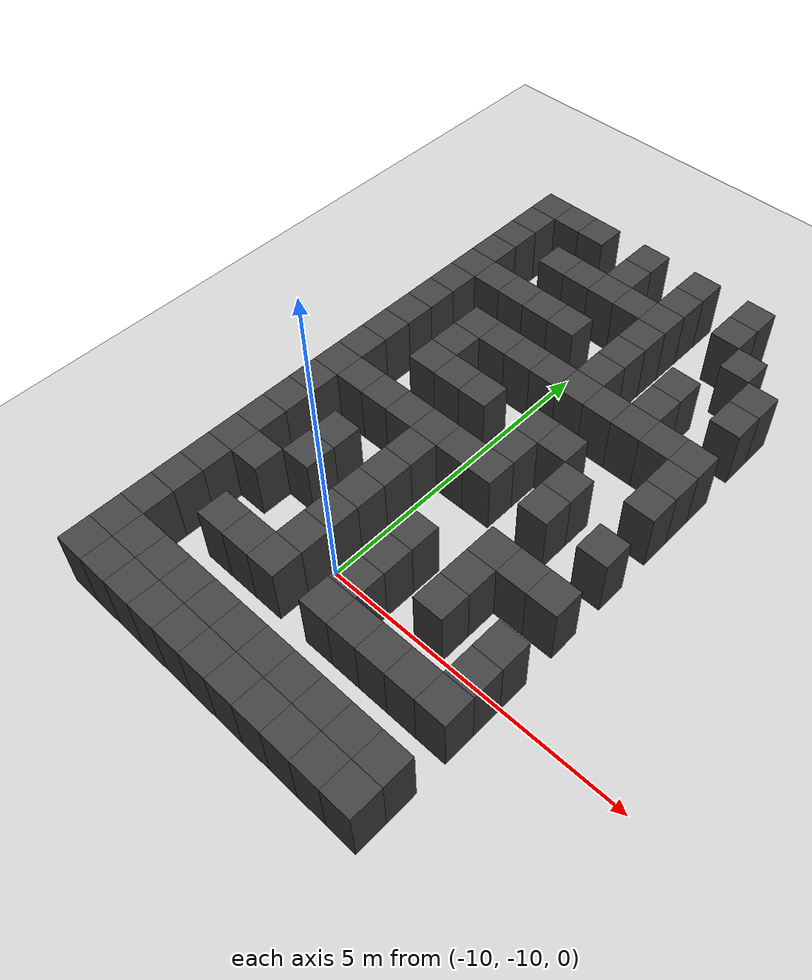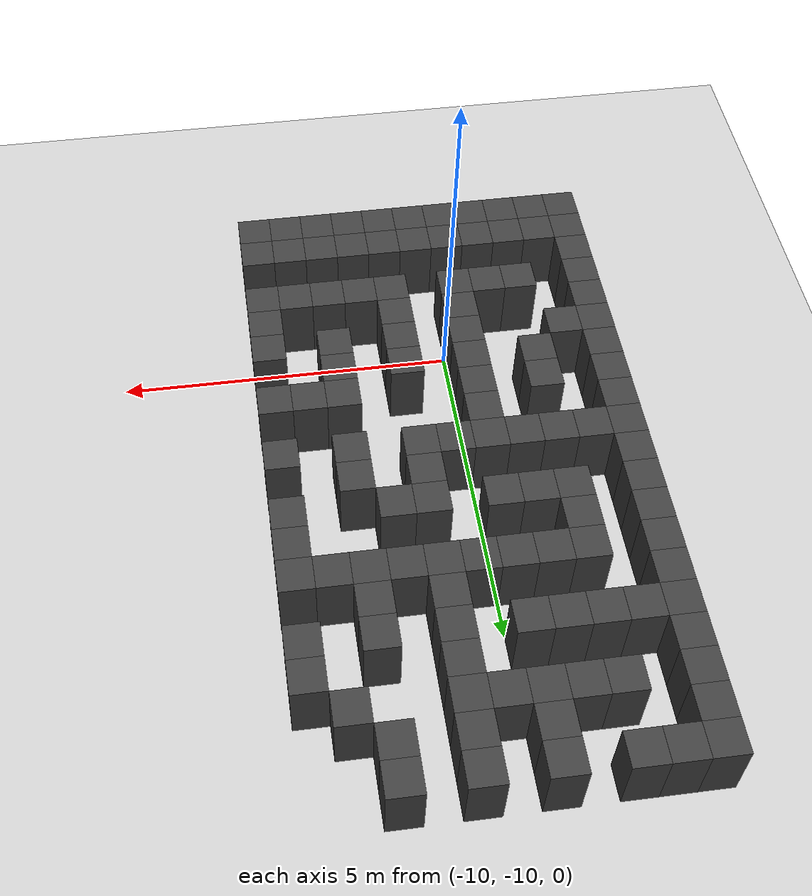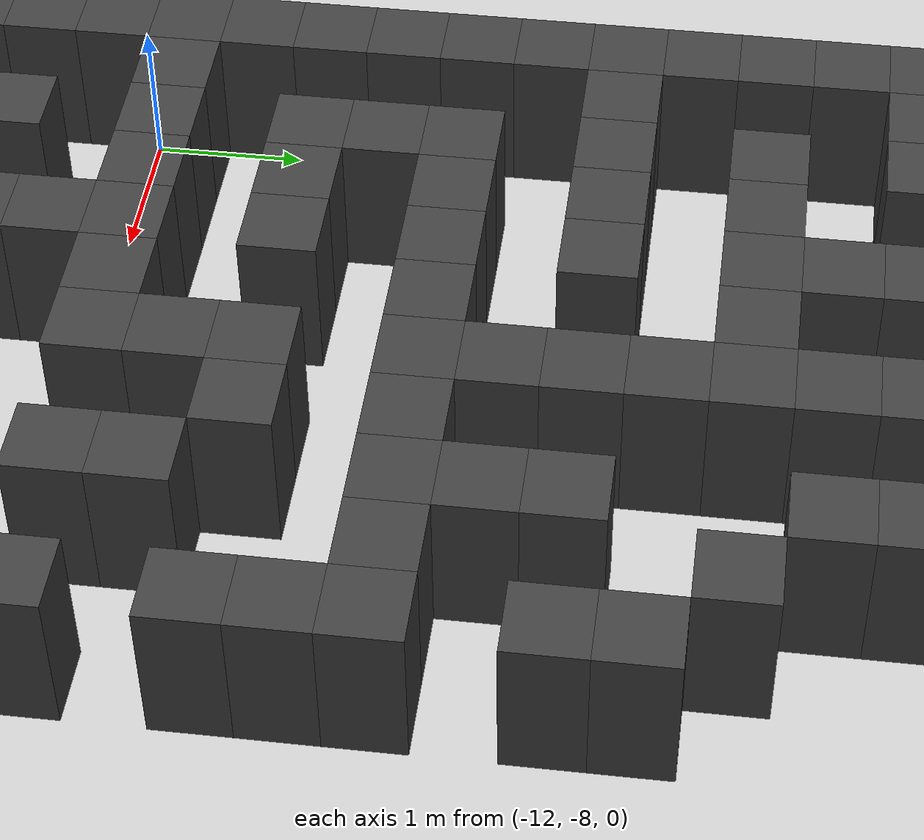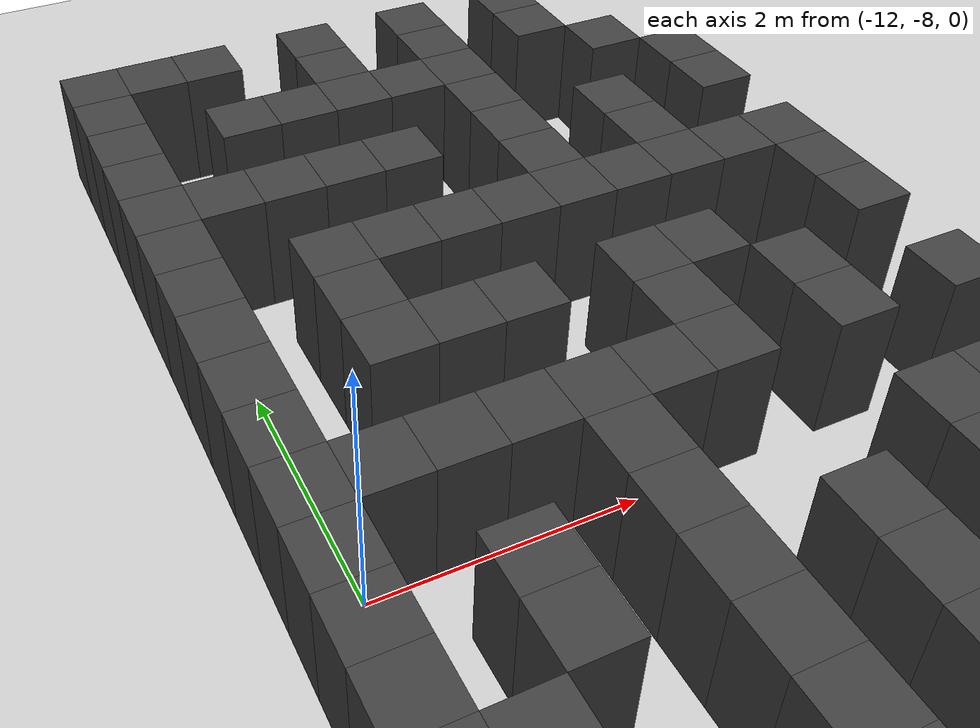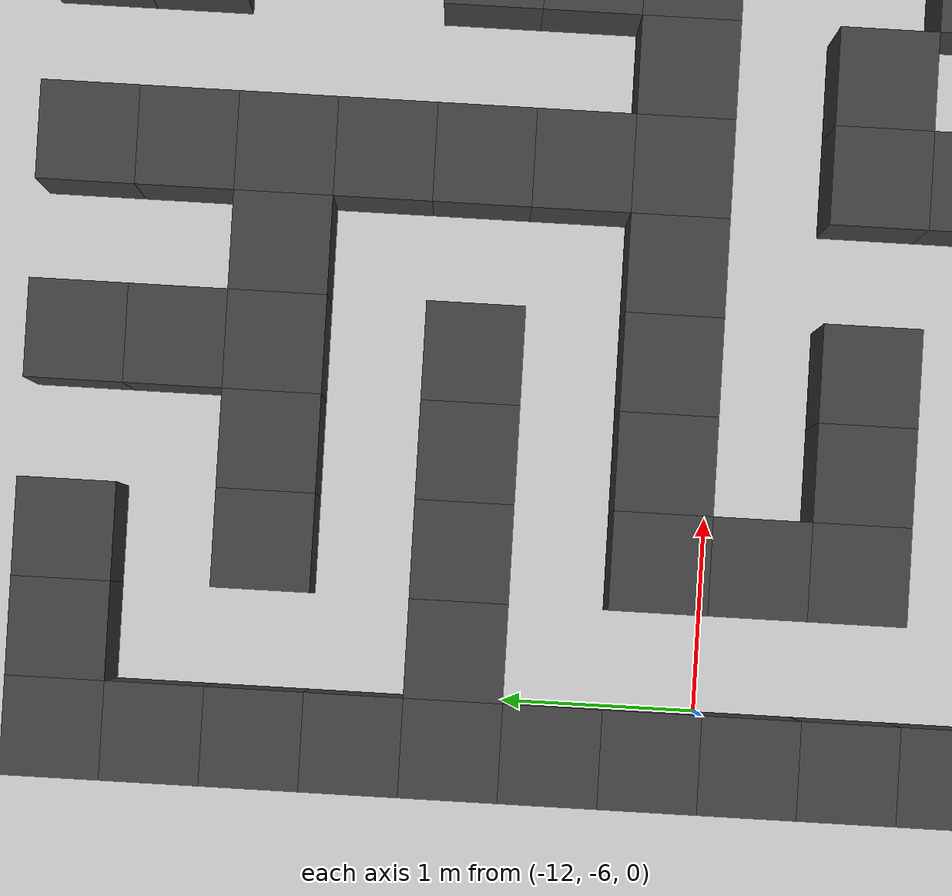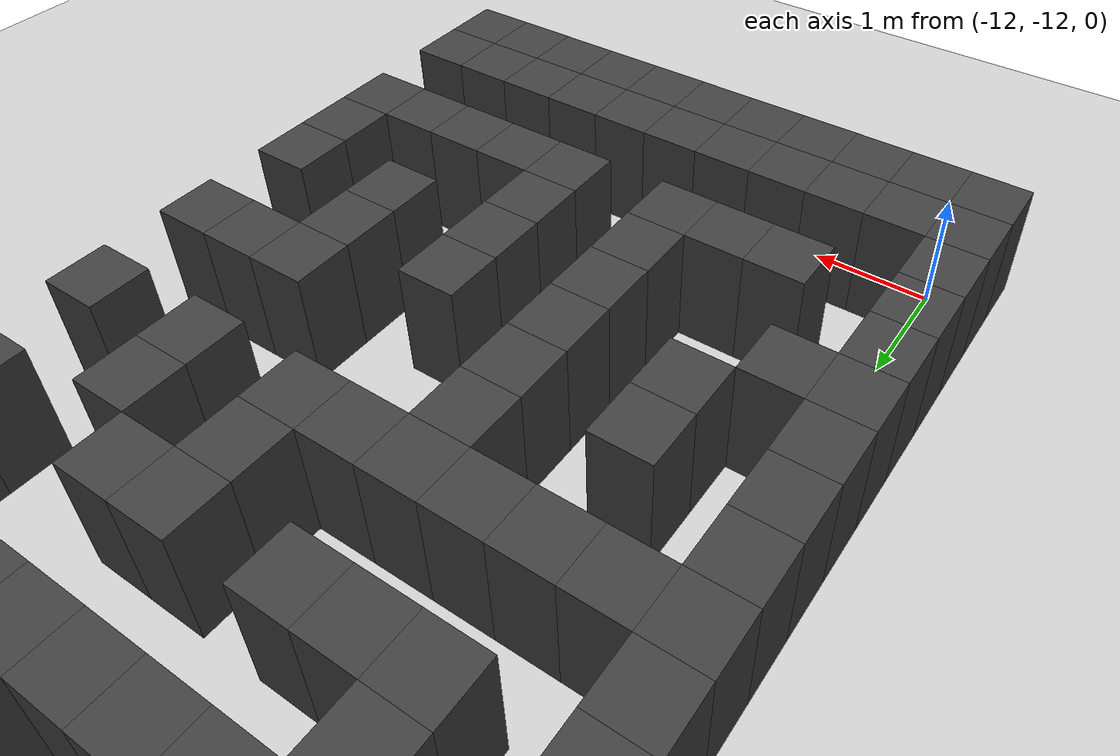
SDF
<sdf version="1.7">
 <world name="map_18553">
  <model name="ground_plane">
   <static>true</static>
   <link name="link">
    <collision name="collision">
     <geometry><plane><normal>0 0 1</normal><size>200 200</size></plane></geometry>
    </collision>
    <visual name="visual">
     <geometry><plane><normal>0 0 1</normal><size>200 200</size></plane></geometry>
     <material><ambient>0.8 0.8 0.8 1</ambient><diffuse>0.8 0.8 0.8 1</diffuse></material>
    </visual>
   </link>
  </model>
  <model name="maze_environment">
   <static>true</static>
   <link name="wall_757">
    <pose>-12.250 -2.750 0.500 0 0 0</pose>
    <collision name="col"><geometry><box><size>0.5 0.5 1.0</size></box></geometry></collision>
    <visual name="vis">
     <geometry><box><size>0.5 0.5 1.0</size></box></geometry>
     <material><ambient>0.15 0.15 0.15 1</ambient><diffuse>0.25 0.25 0.25 1</diffuse></material>
    </visual>
   </link>
   <link name="wall_758">
    <pose>-11.750 -2.750 0.500 0 0 0</pose>
    <collision name="col"><geometry><box><size>0.5 0.5 1.0</size></box></geometry></collision>
    <visual name="vis">
     <geometry><box><size>0.5 0.5 1.0</size></box></geometry>
     <material><ambient>0.15 0.15 0.15 1</ambient><diffuse>0.25 0.25 0.25 1</diffuse></material>
    </visual>
   </link>
   <link name="wall_759">
    <pose>-11.250 -2.750 0.500 0 0 0</pose>
    <collision name="col"><geometry><box><size>0.5 0.5 1.0</size></box></geometry></collision>
    <visual name="vis">
     <geometry><box><size>0.5 0.5 1.0</size></box></geometry>
     <material><ambient>0.15 0.15 0.15 1</ambient><diffuse>0.25 0.25 0.25 1</diffuse></material>
    </visual>
   </link>
   <link name="wall_760">
    <pose>-10.250 -2.750 0.500 0 0 0</pose>
    <collision name="col"><geometry><box><size>0.5 0.5 1.0</size></box></geometry></collision>
    <visual name="vis">
     <geometry><box><size>0.5 0.5 1.0</size></box></geometry>
     <material><ambient>0.15 0.15 0.15 1</ambient><diffuse>0.25 0.25 0.25 1</diffuse></material>
    </visual>
   </link>
   <link name="wall_761">
    <pose>-9.250 -2.750 0.500 0 0 0</pose>
    <collision name="col"><geometry><box><size>0.5 0.5 1.0</size></box></geometry></collision>
    <visual name="vis">
     <geometry><box><size>0.5 0.5 1.0</size></box></geometry>
     <material><ambient>0.15 0.15 0.15 1</ambient><diffuse>0.25 0.25 0.25 1</diffuse></material>
    </visual>
   </link>
   <link name="wall_762">
    <pose>-8.250 -2.750 0.500 0 0 0</pose>
    <collision name="col"><geometry><box><size>0.5 0.5 1.0</size></box></geometry></collision>
    <visual name="vis">
     <geometry><box><size>0.5 0.5 1.0</size></box></geometry>
     <material><ambient>0.15 0.15 0.15 1</ambient><diffuse>0.25 0.25 0.25 1</diffuse></material>
    </visual>
   </link>
   <link name="wall_791">
    <pose>-12.250 -3.250 0.500 0 0 0</pose>
    <collision name="col"><geometry><box><size>0.5 0.5 1.0</size></box></geometry></collision>
    <visual name="vis">
     <geometry><box><size>0.5 0.5 1.0</size></box></geometry>
     <material><ambient>0.15 0.15 0.15 1</ambient><diffuse>0.25 0.25 0.25 1</diffuse></material>
    </visual>
   </link>
   <link name="wall_792">
    <pose>-10.250 -3.250 0.500 0 0 0</pose>
    <collision name="col"><geometry><box><size>0.5 0.5 1.0</size></box></geometry></collision>
    <visual name="vis">
     <geometry><box><size>0.5 0.5 1.0</size></box></geometry>
     <material><ambient>0.15 0.15 0.15 1</ambient><diffuse>0.25 0.25 0.25 1</diffuse></material>
    </visual>
   </link>
   <link name="wall_793">
    <pose>-9.250 -3.250 0.500 0 0 0</pose>
    <collision name="col"><geometry><box><size>0.5 0.5 1.0</size></box></geometry></collision>
    <visual name="vis">
     <geometry><box><size>0.5 0.5 1.0</size></box></geometry>
     <material><ambient>0.15 0.15 0.15 1</ambient><diffuse>0.25 0.25 0.25 1</diffuse></material>
    </visual>
   </link>
   <link name="wall_794">
    <pose>-8.250 -3.250 0.500 0 0 0</pose>
    <collision name="col"><geometry><box><size>0.5 0.5 1.0</size></box></geometry></collision>
    <visual name="vis">
     <geometry><box><size>0.5 0.5 1.0</size></box></geometry>
     <material><ambient>0.15 0.15 0.15 1</ambient><diffuse>0.25 0.25 0.25 1</diffuse></material>
    </visual>
   </link>
   <link name="wall_806">
    <pose>-12.250 -3.750 0.500 0 0 0</pose>
    <collision name="col"><geometry><box><size>0.5 0.5 1.0</size></box></geometry></collision>
    <visual name="vis">
     <geometry><box><size>0.5 0.5 1.0</size></box></geometry>
     <material><ambient>0.15 0.15 0.15 1</ambient><diffuse>0.25 0.25 0.25 1</diffuse></material>
    </visual>
   </link>
   <link name="wall_807">
    <pose>-11.250 -3.750 0.500 0 0 0</pose>
    <collision name="col"><geometry><box><size>0.5 0.5 1.0</size></box></geometry></collision>
    <visual name="vis">
     <geometry><box><size>0.5 0.5 1.0</size></box></geometry>
     <material><ambient>0.15 0.15 0.15 1</ambient><diffuse>0.25 0.25 0.25 1</diffuse></material>
    </visual>
   </link>
   <link name="wall_808">
    <pose>-10.750 -3.750 0.500 0 0 0</pose>
    <collision name="col"><geometry><box><size>0.5 0.5 1.0</size></box></geometry></collision>
    <visual name="vis">
     <geometry><box><size>0.5 0.5 1.0</size></box></geometry>
     <material><ambient>0.15 0.15 0.15 1</ambient><diffuse>0.25 0.25 0.25 1</diffuse></material>
    </visual>
   </link>
   <link name="wall_809">
    <pose>-10.250 -3.750 0.500 0 0 0</pose>
    <collision name="col"><geometry><box><size>0.5 0.5 1.0</size></box></geometry></collision>
    <visual name="vis">
     <geometry><box><size>0.5 0.5 1.0</size></box></geometry>
     <material><ambient>0.15 0.15 0.15 1</ambient><diffuse>0.25 0.25 0.25 1</diffuse></material>
    </visual>
   </link>
   <link name="wall_810">
    <pose>-9.750 -3.750 0.500 0 0 0</pose>
    <collision name="col"><geometry><box><size>0.5 0.5 1.0</size></box></geometry></collision>
    <visual name="vis">
     <geometry><box><size>0.5 0.5 1.0</size></box></geometry>
     <material><ambient>0.15 0.15 0.15 1</ambient><diffuse>0.25 0.25 0.25 1</diffuse></material>
    </visual>
   </link>
   <link name="wall_811">
    <pose>-9.250 -3.750 0.500 0 0 0</pose>
    <collision name="col"><geometry><box><size>0.5 0.5 1.0</size></box></geometry></collision>
    <visual name="vis">
     <geometry><box><size>0.5 0.5 1.0</size></box></geometry>
     <material><ambient>0.15 0.15 0.15 1</ambient><diffuse>0.25 0.25 0.25 1</diffuse></material>
    </visual>
   </link>
   <link name="wall_812">
    <pose>-7.750 -3.750 0.500 0 0 0</pose>
    <collision name="col"><geometry><box><size>0.5 0.5 1.0</size></box></geometry></collision>
    <visual name="vis">
     <geometry><box><size>0.5 0.5 1.0</size></box></geometry>
     <material><ambient>0.15 0.15 0.15 1</ambient><diffuse>0.25 0.25 0.25 1</diffuse></material>
    </visual>
   </link>
   <link name="wall_842">
    <pose>-12.250 -4.250 0.500 0 0 0</pose>
    <collision name="col"><geometry><box><size>0.5 0.5 1.0</size></box></geometry></collision>
    <visual name="vis">
     <geometry><box><size>0.5 0.5 1.0</size></box></geometry>
     <material><ambient>0.15 0.15 0.15 1</ambient><diffuse>0.25 0.25 0.25 1</diffuse></material>
    </visual>
   </link>
   <link name="wall_843">
    <pose>-9.250 -4.250 0.500 0 0 0</pose>
    <collision name="col"><geometry><box><size>0.5 0.5 1.0</size></box></geometry></collision>
    <visual name="vis">
     <geometry><box><size>0.5 0.5 1.0</size></box></geometry>
     <material><ambient>0.15 0.15 0.15 1</ambient><diffuse>0.25 0.25 0.25 1</diffuse></material>
    </visual>
   </link>
   <link name="wall_844">
    <pose>-7.250 -4.250 0.500 0 0 0</pose>
    <collision name="col"><geometry><box><size>0.5 0.5 1.0</size></box></geometry></collision>
    <visual name="vis">
     <geometry><box><size>0.5 0.5 1.0</size></box></geometry>
     <material><ambient>0.15 0.15 0.15 1</ambient><diffuse>0.25 0.25 0.25 1</diffuse></material>
    </visual>
   </link>
   <link name="wall_853">
    <pose>-12.250 -4.750 0.500 0 0 0</pose>
    <collision name="col"><geometry><box><size>0.5 0.5 1.0</size></box></geometry></collision>
    <visual name="vis">
     <geometry><box><size>0.5 0.5 1.0</size></box></geometry>
     <material><ambient>0.15 0.15 0.15 1</ambient><diffuse>0.25 0.25 0.25 1</diffuse></material>
    </visual>
   </link>
   <link name="wall_854">
    <pose>-11.750 -4.750 0.500 0 0 0</pose>
    <collision name="col"><geometry><box><size>0.5 0.5 1.0</size></box></geometry></collision>
    <visual name="vis">
     <geometry><box><size>0.5 0.5 1.0</size></box></geometry>
     <material><ambient>0.15 0.15 0.15 1</ambient><diffuse>0.25 0.25 0.25 1</diffuse></material>
    </visual>
   </link>
   <link name="wall_855">
    <pose>-11.250 -4.750 0.500 0 0 0</pose>
    <collision name="col"><geometry><box><size>0.5 0.5 1.0</size></box></geometry></collision>
    <visual name="vis">
     <geometry><box><size>0.5 0.5 1.0</size></box></geometry>
     <material><ambient>0.15 0.15 0.15 1</ambient><diffuse>0.25 0.25 0.25 1</diffuse></material>
    </visual>
   </link>
   <link name="wall_856">
    <pose>-10.750 -4.750 0.500 0 0 0</pose>
    <collision name="col"><geometry><box><size>0.5 0.5 1.0</size></box></geometry></collision>
    <visual name="vis">
     <geometry><box><size>0.5 0.5 1.0</size></box></geometry>
     <material><ambient>0.15 0.15 0.15 1</ambient><diffuse>0.25 0.25 0.25 1</diffuse></material>
    </visual>
   </link>
   <link name="wall_857">
    <pose>-10.250 -4.750 0.500 0 0 0</pose>
    <collision name="col"><geometry><box><size>0.5 0.5 1.0</size></box></geometry></collision>
    <visual name="vis">
     <geometry><box><size>0.5 0.5 1.0</size></box></geometry>
     <material><ambient>0.15 0.15 0.15 1</ambient><diffuse>0.25 0.25 0.25 1</diffuse></material>
    </visual>
   </link>
   <link name="wall_858">
    <pose>-9.250 -4.750 0.500 0 0 0</pose>
    <collision name="col"><geometry><box><size>0.5 0.5 1.0</size></box></geometry></collision>
    <visual name="vis">
     <geometry><box><size>0.5 0.5 1.0</size></box></geometry>
     <material><ambient>0.15 0.15 0.15 1</ambient><diffuse>0.25 0.25 0.25 1</diffuse></material>
    </visual>
   </link>
   <link name="wall_859">
    <pose>-8.250 -4.750 0.500 0 0 0</pose>
    <collision name="col"><geometry><box><size>0.5 0.5 1.0</size></box></geometry></collision>
    <visual name="vis">
     <geometry><box><size>0.5 0.5 1.0</size></box></geometry>
     <material><ambient>0.15 0.15 0.15 1</ambient><diffuse>0.25 0.25 0.25 1</diffuse></material>
    </visual>
   </link>
   <link name="wall_860">
    <pose>-7.250 -4.750 0.500 0 0 0</pose>
    <collision name="col"><geometry><box><size>0.5 0.5 1.0</size></box></geometry></collision>
    <visual name="vis">
     <geometry><box><size>0.5 0.5 1.0</size></box></geometry>
     <material><ambient>0.15 0.15 0.15 1</ambient><diffuse>0.25 0.25 0.25 1</diffuse></material>
    </visual>
   </link>
   <link name="wall_892">
    <pose>-12.250 -5.250 0.500 0 0 0</pose>
    <collision name="col"><geometry><box><size>0.5 0.5 1.0</size></box></geometry></collision>
    <visual name="vis">
     <geometry><box><size>0.5 0.5 1.0</size></box></geometry>
     <material><ambient>0.15 0.15 0.15 1</ambient><diffuse>0.25 0.25 0.25 1</diffuse></material>
    </visual>
   </link>
   <link name="wall_893">
    <pose>-9.250 -5.250 0.500 0 0 0</pose>
    <collision name="col"><geometry><box><size>0.5 0.5 1.0</size></box></geometry></collision>
    <visual name="vis">
     <geometry><box><size>0.5 0.5 1.0</size></box></geometry>
     <material><ambient>0.15 0.15 0.15 1</ambient><diffuse>0.25 0.25 0.25 1</diffuse></material>
    </visual>
   </link>
   <link name="wall_894">
    <pose>-8.250 -5.250 0.500 0 0 0</pose>
    <collision name="col"><geometry><box><size>0.5 0.5 1.0</size></box></geometry></collision>
    <visual name="vis">
     <geometry><box><size>0.5 0.5 1.0</size></box></geometry>
     <material><ambient>0.15 0.15 0.15 1</ambient><diffuse>0.25 0.25 0.25 1</diffuse></material>
    </visual>
   </link>
   <link name="wall_904">
    <pose>-12.250 -5.750 0.500 0 0 0</pose>
    <collision name="col"><geometry><box><size>0.5 0.5 1.0</size></box></geometry></collision>
    <visual name="vis">
     <geometry><box><size>0.5 0.5 1.0</size></box></geometry>
     <material><ambient>0.15 0.15 0.15 1</ambient><diffuse>0.25 0.25 0.25 1</diffuse></material>
    </visual>
   </link>
   <link name="wall_905">
    <pose>-11.250 -5.750 0.500 0 0 0</pose>
    <collision name="col"><geometry><box><size>0.5 0.5 1.0</size></box></geometry></collision>
    <visual name="vis">
     <geometry><box><size>0.5 0.5 1.0</size></box></geometry>
     <material><ambient>0.15 0.15 0.15 1</ambient><diffuse>0.25 0.25 0.25 1</diffuse></material>
    </visual>
   </link>
   <link name="wall_906">
    <pose>-10.750 -5.750 0.500 0 0 0</pose>
    <collision name="col"><geometry><box><size>0.5 0.5 1.0</size></box></geometry></collision>
    <visual name="vis">
     <geometry><box><size>0.5 0.5 1.0</size></box></geometry>
     <material><ambient>0.15 0.15 0.15 1</ambient><diffuse>0.25 0.25 0.25 1</diffuse></material>
    </visual>
   </link>
   <link name="wall_907">
    <pose>-10.250 -5.750 0.500 0 0 0</pose>
    <collision name="col"><geometry><box><size>0.5 0.5 1.0</size></box></geometry></collision>
    <visual name="vis">
     <geometry><box><size>0.5 0.5 1.0</size></box></geometry>
     <material><ambient>0.15 0.15 0.15 1</ambient><diffuse>0.25 0.25 0.25 1</diffuse></material>
    </visual>
   </link>
   <link name="wall_908">
    <pose>-9.750 -5.750 0.500 0 0 0</pose>
    <collision name="col"><geometry><box><size>0.5 0.5 1.0</size></box></geometry></collision>
    <visual name="vis">
     <geometry><box><size>0.5 0.5 1.0</size></box></geometry>
     <material><ambient>0.15 0.15 0.15 1</ambient><diffuse>0.25 0.25 0.25 1</diffuse></material>
    </visual>
   </link>
   <link name="wall_909">
    <pose>-9.250 -5.750 0.500 0 0 0</pose>
    <collision name="col"><geometry><box><size>0.5 0.5 1.0</size></box></geometry></collision>
    <visual name="vis">
     <geometry><box><size>0.5 0.5 1.0</size></box></geometry>
     <material><ambient>0.15 0.15 0.15 1</ambient><diffuse>0.25 0.25 0.25 1</diffuse></material>
    </visual>
   </link>
   <link name="wall_910">
    <pose>-8.750 -5.750 0.500 0 0 0</pose>
    <collision name="col"><geometry><box><size>0.5 0.5 1.0</size></box></geometry></collision>
    <visual name="vis">
     <geometry><box><size>0.5 0.5 1.0</size></box></geometry>
     <material><ambient>0.15 0.15 0.15 1</ambient><diffuse>0.25 0.25 0.25 1</diffuse></material>
    </visual>
   </link>
   <link name="wall_911">
    <pose>-8.250 -5.750 0.500 0 0 0</pose>
    <collision name="col"><geometry><box><size>0.5 0.5 1.0</size></box></geometry></collision>
    <visual name="vis">
     <geometry><box><size>0.5 0.5 1.0</size></box></geometry>
     <material><ambient>0.15 0.15 0.15 1</ambient><diffuse>0.25 0.25 0.25 1</diffuse></material>
    </visual>
   </link>
   <link name="wall_912">
    <pose>-7.750 -5.750 0.500 0 0 0</pose>
    <collision name="col"><geometry><box><size>0.5 0.5 1.0</size></box></geometry></collision>
    <visual name="vis">
     <geometry><box><size>0.5 0.5 1.0</size></box></geometry>
     <material><ambient>0.15 0.15 0.15 1</ambient><diffuse>0.25 0.25 0.25 1</diffuse></material>
    </visual>
   </link>
   <link name="wall_913">
    <pose>-7.250 -5.750 0.500 0 0 0</pose>
    <collision name="col"><geometry><box><size>0.5 0.5 1.0</size></box></geometry></collision>
    <visual name="vis">
     <geometry><box><size>0.5 0.5 1.0</size></box></geometry>
     <material><ambient>0.15 0.15 0.15 1</ambient><diffuse>0.25 0.25 0.25 1</diffuse></material>
    </visual>
   </link>
   <link name="wall_945">
    <pose>-12.250 -6.250 0.500 0 0 0</pose>
    <collision name="col"><geometry><box><size>0.5 0.5 1.0</size></box></geometry></collision>
    <visual name="vis">
     <geometry><box><size>0.5 0.5 1.0</size></box></geometry>
     <material><ambient>0.15 0.15 0.15 1</ambient><diffuse>0.25 0.25 0.25 1</diffuse></material>
    </visual>
   </link>
   <link name="wall_946">
    <pose>-11.250 -6.250 0.500 0 0 0</pose>
    <collision name="col"><geometry><box><size>0.5 0.5 1.0</size></box></geometry></collision>
    <visual name="vis">
     <geometry><box><size>0.5 0.5 1.0</size></box></geometry>
     <material><ambient>0.15 0.15 0.15 1</ambient><diffuse>0.25 0.25 0.25 1</diffuse></material>
    </visual>
   </link>
   <link name="wall_947">
    <pose>-7.250 -6.250 0.500 0 0 0</pose>
    <collision name="col"><geometry><box><size>0.5 0.5 1.0</size></box></geometry></collision>
    <visual name="vis">
     <geometry><box><size>0.5 0.5 1.0</size></box></geometry>
     <material><ambient>0.15 0.15 0.15 1</ambient><diffuse>0.25 0.25 0.25 1</diffuse></material>
    </visual>
   </link>
   <link name="wall_957">
    <pose>-12.250 -6.750 0.500 0 0 0</pose>
    <collision name="col"><geometry><box><size>0.5 0.5 1.0</size></box></geometry></collision>
    <visual name="vis">
     <geometry><box><size>0.5 0.5 1.0</size></box></geometry>
     <material><ambient>0.15 0.15 0.15 1</ambient><diffuse>0.25 0.25 0.25 1</diffuse></material>
    </visual>
   </link>
   <link name="wall_958">
    <pose>-11.250 -6.750 0.500 0 0 0</pose>
    <collision name="col"><geometry><box><size>0.5 0.5 1.0</size></box></geometry></collision>
    <visual name="vis">
     <geometry><box><size>0.5 0.5 1.0</size></box></geometry>
     <material><ambient>0.15 0.15 0.15 1</ambient><diffuse>0.25 0.25 0.25 1</diffuse></material>
    </visual>
   </link>
   <link name="wall_959">
    <pose>-10.750 -6.750 0.500 0 0 0</pose>
    <collision name="col"><geometry><box><size>0.5 0.5 1.0</size></box></geometry></collision>
    <visual name="vis">
     <geometry><box><size>0.5 0.5 1.0</size></box></geometry>
     <material><ambient>0.15 0.15 0.15 1</ambient><diffuse>0.25 0.25 0.25 1</diffuse></material>
    </visual>
   </link>
   <link name="wall_960">
    <pose>-10.250 -6.750 0.500 0 0 0</pose>
    <collision name="col"><geometry><box><size>0.5 0.5 1.0</size></box></geometry></collision>
    <visual name="vis">
     <geometry><box><size>0.5 0.5 1.0</size></box></geometry>
     <material><ambient>0.15 0.15 0.15 1</ambient><diffuse>0.25 0.25 0.25 1</diffuse></material>
    </visual>
   </link>
   <link name="wall_961">
    <pose>-9.250 -6.750 0.500 0 0 0</pose>
    <collision name="col"><geometry><box><size>0.5 0.5 1.0</size></box></geometry></collision>
    <visual name="vis">
     <geometry><box><size>0.5 0.5 1.0</size></box></geometry>
     <material><ambient>0.15 0.15 0.15 1</ambient><diffuse>0.25 0.25 0.25 1</diffuse></material>
    </visual>
   </link>
   <link name="wall_962">
    <pose>-8.750 -6.750 0.500 0 0 0</pose>
    <collision name="col"><geometry><box><size>0.5 0.5 1.0</size></box></geometry></collision>
    <visual name="vis">
     <geometry><box><size>0.5 0.5 1.0</size></box></geometry>
     <material><ambient>0.15 0.15 0.15 1</ambient><diffuse>0.25 0.25 0.25 1</diffuse></material>
    </visual>
   </link>
   <link name="wall_963">
    <pose>-7.250 -6.750 0.500 0 0 0</pose>
    <collision name="col"><geometry><box><size>0.5 0.5 1.0</size></box></geometry></collision>
    <visual name="vis">
     <geometry><box><size>0.5 0.5 1.0</size></box></geometry>
     <material><ambient>0.15 0.15 0.15 1</ambient><diffuse>0.25 0.25 0.25 1</diffuse></material>
    </visual>
   </link>
   <link name="wall_992">
    <pose>-12.250 -7.250 0.500 0 0 0</pose>
    <collision name="col"><geometry><box><size>0.5 0.5 1.0</size></box></geometry></collision>
    <visual name="vis">
     <geometry><box><size>0.5 0.5 1.0</size></box></geometry>
     <material><ambient>0.15 0.15 0.15 1</ambient><diffuse>0.25 0.25 0.25 1</diffuse></material>
    </visual>
   </link>
   <link name="wall_993">
    <pose>-9.250 -7.250 0.500 0 0 0</pose>
    <collision name="col"><geometry><box><size>0.5 0.5 1.0</size></box></geometry></collision>
    <visual name="vis">
     <geometry><box><size>0.5 0.5 1.0</size></box></geometry>
     <material><ambient>0.15 0.15 0.15 1</ambient><diffuse>0.25 0.25 0.25 1</diffuse></material>
    </visual>
   </link>
   <link name="wall_994">
    <pose>-8.250 -7.250 0.500 0 0 0</pose>
    <collision name="col"><geometry><box><size>0.5 0.5 1.0</size></box></geometry></collision>
    <visual name="vis">
     <geometry><box><size>0.5 0.5 1.0</size></box></geometry>
     <material><ambient>0.15 0.15 0.15 1</ambient><diffuse>0.25 0.25 0.25 1</diffuse></material>
    </visual>
   </link>
   <link name="wall_1006">
    <pose>-12.250 -7.750 0.500 0 0 0</pose>
    <collision name="col"><geometry><box><size>0.5 0.5 1.0</size></box></geometry></collision>
    <visual name="vis">
     <geometry><box><size>0.5 0.5 1.0</size></box></geometry>
     <material><ambient>0.15 0.15 0.15 1</ambient><diffuse>0.25 0.25 0.25 1</diffuse></material>
    </visual>
   </link>
   <link name="wall_1007">
    <pose>-11.750 -7.750 0.500 0 0 0</pose>
    <collision name="col"><geometry><box><size>0.5 0.5 1.0</size></box></geometry></collision>
    <visual name="vis">
     <geometry><box><size>0.5 0.5 1.0</size></box></geometry>
     <material><ambient>0.15 0.15 0.15 1</ambient><diffuse>0.25 0.25 0.25 1</diffuse></material>
    </visual>
   </link>
   <link name="wall_1008">
    <pose>-11.250 -7.750 0.500 0 0 0</pose>
    <collision name="col"><geometry><box><size>0.5 0.5 1.0</size></box></geometry></collision>
    <visual name="vis">
     <geometry><box><size>0.5 0.5 1.0</size></box></geometry>
     <material><ambient>0.15 0.15 0.15 1</ambient><diffuse>0.25 0.25 0.25 1</diffuse></material>
    </visual>
   </link>
   <link name="wall_1009">
    <pose>-10.750 -7.750 0.500 0 0 0</pose>
    <collision name="col"><geometry><box><size>0.5 0.5 1.0</size></box></geometry></collision>
    <visual name="vis">
     <geometry><box><size>0.5 0.5 1.0</size></box></geometry>
     <material><ambient>0.15 0.15 0.15 1</ambient><diffuse>0.25 0.25 0.25 1</diffuse></material>
    </visual>
   </link>
   <link name="wall_1010">
    <pose>-10.250 -7.750 0.500 0 0 0</pose>
    <collision name="col"><geometry><box><size>0.5 0.5 1.0</size></box></geometry></collision>
    <visual name="vis">
     <geometry><box><size>0.5 0.5 1.0</size></box></geometry>
     <material><ambient>0.15 0.15 0.15 1</ambient><diffuse>0.25 0.25 0.25 1</diffuse></material>
    </visual>
   </link>
   <link name="wall_1011">
    <pose>-9.750 -7.750 0.500 0 0 0</pose>
    <collision name="col"><geometry><box><size>0.5 0.5 1.0</size></box></geometry></collision>
    <visual name="vis">
     <geometry><box><size>0.5 0.5 1.0</size></box></geometry>
     <material><ambient>0.15 0.15 0.15 1</ambient><diffuse>0.25 0.25 0.25 1</diffuse></material>
    </visual>
   </link>
   <link name="wall_1012">
    <pose>-9.250 -7.750 0.500 0 0 0</pose>
    <collision name="col"><geometry><box><size>0.5 0.5 1.0</size></box></geometry></collision>
    <visual name="vis">
     <geometry><box><size>0.5 0.5 1.0</size></box></geometry>
     <material><ambient>0.15 0.15 0.15 1</ambient><diffuse>0.25 0.25 0.25 1</diffuse></material>
    </visual>
   </link>
   <link name="wall_1013">
    <pose>-8.250 -7.750 0.500 0 0 0</pose>
    <collision name="col"><geometry><box><size>0.5 0.5 1.0</size></box></geometry></collision>
    <visual name="vis">
     <geometry><box><size>0.5 0.5 1.0</size></box></geometry>
     <material><ambient>0.15 0.15 0.15 1</ambient><diffuse>0.25 0.25 0.25 1</diffuse></material>
    </visual>
   </link>
   <link name="wall_1014">
    <pose>-7.250 -7.750 0.500 0 0 0</pose>
    <collision name="col"><geometry><box><size>0.5 0.5 1.0</size></box></geometry></collision>
    <visual name="vis">
     <geometry><box><size>0.5 0.5 1.0</size></box></geometry>
     <material><ambient>0.15 0.15 0.15 1</ambient><diffuse>0.25 0.25 0.25 1</diffuse></material>
    </visual>
   </link>
   <link name="wall_1042">
    <pose>-12.250 -8.250 0.500 0 0 0</pose>
    <collision name="col"><geometry><box><size>0.5 0.5 1.0</size></box></geometry></collision>
    <visual name="vis">
     <geometry><box><size>0.5 0.5 1.0</size></box></geometry>
     <material><ambient>0.15 0.15 0.15 1</ambient><diffuse>0.25 0.25 0.25 1</diffuse></material>
    </visual>
   </link>
   <link name="wall_1043">
    <pose>-10.250 -8.250 0.500 0 0 0</pose>
    <collision name="col"><geometry><box><size>0.5 0.5 1.0</size></box></geometry></collision>
    <visual name="vis">
     <geometry><box><size>0.5 0.5 1.0</size></box></geometry>
     <material><ambient>0.15 0.15 0.15 1</ambient><diffuse>0.25 0.25 0.25 1</diffuse></material>
    </visual>
   </link>
   <link name="wall_1057">
    <pose>-12.250 -8.750 0.500 0 0 0</pose>
    <collision name="col"><geometry><box><size>0.5 0.5 1.0</size></box></geometry></collision>
    <visual name="vis">
     <geometry><box><size>0.5 0.5 1.0</size></box></geometry>
     <material><ambient>0.15 0.15 0.15 1</ambient><diffuse>0.25 0.25 0.25 1</diffuse></material>
    </visual>
   </link>
   <link name="wall_1058">
    <pose>-11.250 -8.750 0.500 0 0 0</pose>
    <collision name="col"><geometry><box><size>0.5 0.5 1.0</size></box></geometry></collision>
    <visual name="vis">
     <geometry><box><size>0.5 0.5 1.0</size></box></geometry>
     <material><ambient>0.15 0.15 0.15 1</ambient><diffuse>0.25 0.25 0.25 1</diffuse></material>
    </visual>
   </link>
   <link name="wall_1059">
    <pose>-10.250 -8.750 0.500 0 0 0</pose>
    <collision name="col"><geometry><box><size>0.5 0.5 1.0</size></box></geometry></collision>
    <visual name="vis">
     <geometry><box><size>0.5 0.5 1.0</size></box></geometry>
     <material><ambient>0.15 0.15 0.15 1</ambient><diffuse>0.25 0.25 0.25 1</diffuse></material>
    </visual>
   </link>
   <link name="wall_1060">
    <pose>-8.250 -8.750 0.500 0 0 0</pose>
    <collision name="col"><geometry><box><size>0.5 0.5 1.0</size></box></geometry></collision>
    <visual name="vis">
     <geometry><box><size>0.5 0.5 1.0</size></box></geometry>
     <material><ambient>0.15 0.15 0.15 1</ambient><diffuse>0.25 0.25 0.25 1</diffuse></material>
    </visual>
   </link>
   <link name="wall_1061">
    <pose>-7.750 -8.750 0.500 0 0 0</pose>
    <collision name="col"><geometry><box><size>0.5 0.5 1.0</size></box></geometry></collision>
    <visual name="vis">
     <geometry><box><size>0.5 0.5 1.0</size></box></geometry>
     <material><ambient>0.15 0.15 0.15 1</ambient><diffuse>0.25 0.25 0.25 1</diffuse></material>
    </visual>
   </link>
   <link name="wall_1062">
    <pose>-7.250 -8.750 0.500 0 0 0</pose>
    <collision name="col"><geometry><box><size>0.5 0.5 1.0</size></box></geometry></collision>
    <visual name="vis">
     <geometry><box><size>0.5 0.5 1.0</size></box></geometry>
     <material><ambient>0.15 0.15 0.15 1</ambient><diffuse>0.25 0.25 0.25 1</diffuse></material>
    </visual>
   </link>
   <link name="wall_1090">
    <pose>-12.250 -9.250 0.500 0 0 0</pose>
    <collision name="col"><geometry><box><size>0.5 0.5 1.0</size></box></geometry></collision>
    <visual name="vis">
     <geometry><box><size>0.5 0.5 1.0</size></box></geometry>
     <material><ambient>0.15 0.15 0.15 1</ambient><diffuse>0.25 0.25 0.25 1</diffuse></material>
    </visual>
   </link>
   <link name="wall_1091">
    <pose>-11.250 -9.250 0.500 0 0 0</pose>
    <collision name="col"><geometry><box><size>0.5 0.5 1.0</size></box></geometry></collision>
    <visual name="vis">
     <geometry><box><size>0.5 0.5 1.0</size></box></geometry>
     <material><ambient>0.15 0.15 0.15 1</ambient><diffuse>0.25 0.25 0.25 1</diffuse></material>
    </visual>
   </link>
   <link name="wall_1092">
    <pose>-10.250 -9.250 0.500 0 0 0</pose>
    <collision name="col"><geometry><box><size>0.5 0.5 1.0</size></box></geometry></collision>
    <visual name="vis">
     <geometry><box><size>0.5 0.5 1.0</size></box></geometry>
     <material><ambient>0.15 0.15 0.15 1</ambient><diffuse>0.25 0.25 0.25 1</diffuse></material>
    </visual>
   </link>
   <link name="wall_1093">
    <pose>-9.250 -9.250 0.500 0 0 0</pose>
    <collision name="col"><geometry><box><size>0.5 0.5 1.0</size></box></geometry></collision>
    <visual name="vis">
     <geometry><box><size>0.5 0.5 1.0</size></box></geometry>
     <material><ambient>0.15 0.15 0.15 1</ambient><diffuse>0.25 0.25 0.25 1</diffuse></material>
    </visual>
   </link>
   <link name="wall_1094">
    <pose>-8.250 -9.250 0.500 0 0 0</pose>
    <collision name="col"><geometry><box><size>0.5 0.5 1.0</size></box></geometry></collision>
    <visual name="vis">
     <geometry><box><size>0.5 0.5 1.0</size></box></geometry>
     <material><ambient>0.15 0.15 0.15 1</ambient><diffuse>0.25 0.25 0.25 1</diffuse></material>
    </visual>
   </link>
   <link name="wall_1109">
    <pose>-12.250 -9.750 0.500 0 0 0</pose>
    <collision name="col"><geometry><box><size>0.5 0.5 1.0</size></box></geometry></collision>
    <visual name="vis">
     <geometry><box><size>0.5 0.5 1.0</size></box></geometry>
     <material><ambient>0.15 0.15 0.15 1</ambient><diffuse>0.25 0.25 0.25 1</diffuse></material>
    </visual>
   </link>
   <link name="wall_1110">
    <pose>-11.750 -9.750 0.500 0 0 0</pose>
    <collision name="col"><geometry><box><size>0.5 0.5 1.0</size></box></geometry></collision>
    <visual name="vis">
     <geometry><box><size>0.5 0.5 1.0</size></box></geometry>
     <material><ambient>0.15 0.15 0.15 1</ambient><diffuse>0.25 0.25 0.25 1</diffuse></material>
    </visual>
   </link>
   <link name="wall_1111">
    <pose>-10.250 -9.750 0.500 0 0 0</pose>
    <collision name="col"><geometry><box><size>0.5 0.5 1.0</size></box></geometry></collision>
    <visual name="vis">
     <geometry><box><size>0.5 0.5 1.0</size></box></geometry>
     <material><ambient>0.15 0.15 0.15 1</ambient><diffuse>0.25 0.25 0.25 1</diffuse></material>
    </visual>
   </link>
   <link name="wall_1112">
    <pose>-9.250 -9.750 0.500 0 0 0</pose>
    <collision name="col"><geometry><box><size>0.5 0.5 1.0</size></box></geometry></collision>
    <visual name="vis">
     <geometry><box><size>0.5 0.5 1.0</size></box></geometry>
     <material><ambient>0.15 0.15 0.15 1</ambient><diffuse>0.25 0.25 0.25 1</diffuse></material>
    </visual>
   </link>
   <link name="wall_1113">
    <pose>-8.250 -9.750 0.500 0 0 0</pose>
    <collision name="col"><geometry><box><size>0.5 0.5 1.0</size></box></geometry></collision>
    <visual name="vis">
     <geometry><box><size>0.5 0.5 1.0</size></box></geometry>
     <material><ambient>0.15 0.15 0.15 1</ambient><diffuse>0.25 0.25 0.25 1</diffuse></material>
    </visual>
   </link>
   <link name="wall_1114">
    <pose>-7.250 -9.750 0.500 0 0 0</pose>
    <collision name="col"><geometry><box><size>0.5 0.5 1.0</size></box></geometry></collision>
    <visual name="vis">
     <geometry><box><size>0.5 0.5 1.0</size></box></geometry>
     <material><ambient>0.15 0.15 0.15 1</ambient><diffuse>0.25 0.25 0.25 1</diffuse></material>
    </visual>
   </link>
   <link name="wall_1142">
    <pose>-12.250 -10.250 0.500 0 0 0</pose>
    <collision name="col"><geometry><box><size>0.5 0.5 1.0</size></box></geometry></collision>
    <visual name="vis">
     <geometry><box><size>0.5 0.5 1.0</size></box></geometry>
     <material><ambient>0.15 0.15 0.15 1</ambient><diffuse>0.25 0.25 0.25 1</diffuse></material>
    </visual>
   </link>
   <link name="wall_1143">
    <pose>-10.250 -10.250 0.500 0 0 0</pose>
    <collision name="col"><geometry><box><size>0.5 0.5 1.0</size></box></geometry></collision>
    <visual name="vis">
     <geometry><box><size>0.5 0.5 1.0</size></box></geometry>
     <material><ambient>0.15 0.15 0.15 1</ambient><diffuse>0.25 0.25 0.25 1</diffuse></material>
    </visual>
   </link>
   <link name="wall_1144">
    <pose>-9.250 -10.250 0.500 0 0 0</pose>
    <collision name="col"><geometry><box><size>0.5 0.5 1.0</size></box></geometry></collision>
    <visual name="vis">
     <geometry><box><size>0.5 0.5 1.0</size></box></geometry>
     <material><ambient>0.15 0.15 0.15 1</ambient><diffuse>0.25 0.25 0.25 1</diffuse></material>
    </visual>
   </link>
   <link name="wall_1145">
    <pose>-7.250 -10.250 0.500 0 0 0</pose>
    <collision name="col"><geometry><box><size>0.5 0.5 1.0</size></box></geometry></collision>
    <visual name="vis">
     <geometry><box><size>0.5 0.5 1.0</size></box></geometry>
     <material><ambient>0.15 0.15 0.15 1</ambient><diffuse>0.25 0.25 0.25 1</diffuse></material>
    </visual>
   </link>
   <link name="wall_1159">
    <pose>-12.250 -10.750 0.500 0 0 0</pose>
    <collision name="col"><geometry><box><size>0.5 0.5 1.0</size></box></geometry></collision>
    <visual name="vis">
     <geometry><box><size>0.5 0.5 1.0</size></box></geometry>
     <material><ambient>0.15 0.15 0.15 1</ambient><diffuse>0.25 0.25 0.25 1</diffuse></material>
    </visual>
   </link>
   <link name="wall_1160">
    <pose>-11.250 -10.750 0.500 0 0 0</pose>
    <collision name="col"><geometry><box><size>0.5 0.5 1.0</size></box></geometry></collision>
    <visual name="vis">
     <geometry><box><size>0.5 0.5 1.0</size></box></geometry>
     <material><ambient>0.15 0.15 0.15 1</ambient><diffuse>0.25 0.25 0.25 1</diffuse></material>
    </visual>
   </link>
   <link name="wall_1161">
    <pose>-10.750 -10.750 0.500 0 0 0</pose>
    <collision name="col"><geometry><box><size>0.5 0.5 1.0</size></box></geometry></collision>
    <visual name="vis">
     <geometry><box><size>0.5 0.5 1.0</size></box></geometry>
     <material><ambient>0.15 0.15 0.15 1</ambient><diffuse>0.25 0.25 0.25 1</diffuse></material>
    </visual>
   </link>
   <link name="wall_1162">
    <pose>-10.250 -10.750 0.500 0 0 0</pose>
    <collision name="col"><geometry><box><size>0.5 0.5 1.0</size></box></geometry></collision>
    <visual name="vis">
     <geometry><box><size>0.5 0.5 1.0</size></box></geometry>
     <material><ambient>0.15 0.15 0.15 1</ambient><diffuse>0.25 0.25 0.25 1</diffuse></material>
    </visual>
   </link>
   <link name="wall_1163">
    <pose>-9.250 -10.750 0.500 0 0 0</pose>
    <collision name="col"><geometry><box><size>0.5 0.5 1.0</size></box></geometry></collision>
    <visual name="vis">
     <geometry><box><size>0.5 0.5 1.0</size></box></geometry>
     <material><ambient>0.15 0.15 0.15 1</ambient><diffuse>0.25 0.25 0.25 1</diffuse></material>
    </visual>
   </link>
   <link name="wall_1164">
    <pose>-8.750 -10.750 0.500 0 0 0</pose>
    <collision name="col"><geometry><box><size>0.5 0.5 1.0</size></box></geometry></collision>
    <visual name="vis">
     <geometry><box><size>0.5 0.5 1.0</size></box></geometry>
     <material><ambient>0.15 0.15 0.15 1</ambient><diffuse>0.25 0.25 0.25 1</diffuse></material>
    </visual>
   </link>
   <link name="wall_1165">
    <pose>-8.250 -10.750 0.500 0 0 0</pose>
    <collision name="col"><geometry><box><size>0.5 0.5 1.0</size></box></geometry></collision>
    <visual name="vis">
     <geometry><box><size>0.5 0.5 1.0</size></box></geometry>
     <material><ambient>0.15 0.15 0.15 1</ambient><diffuse>0.25 0.25 0.25 1</diffuse></material>
    </visual>
   </link>
   <link name="wall_1166">
    <pose>-7.750 -10.750 0.500 0 0 0</pose>
    <collision name="col"><geometry><box><size>0.5 0.5 1.0</size></box></geometry></collision>
    <visual name="vis">
     <geometry><box><size>0.5 0.5 1.0</size></box></geometry>
     <material><ambient>0.15 0.15 0.15 1</ambient><diffuse>0.25 0.25 0.25 1</diffuse></material>
    </visual>
   </link>
   <link name="wall_1167">
    <pose>-7.250 -10.750 0.500 0 0 0</pose>
    <collision name="col"><geometry><box><size>0.5 0.5 1.0</size></box></geometry></collision>
    <visual name="vis">
     <geometry><box><size>0.5 0.5 1.0</size></box></geometry>
     <material><ambient>0.15 0.15 0.15 1</ambient><diffuse>0.25 0.25 0.25 1</diffuse></material>
    </visual>
   </link>
   <link name="wall_1195">
    <pose>-12.250 -11.250 0.500 0 0 0</pose>
    <collision name="col"><geometry><box><size>0.5 0.5 1.0</size></box></geometry></collision>
    <visual name="vis">
     <geometry><box><size>0.5 0.5 1.0</size></box></geometry>
     <material><ambient>0.15 0.15 0.15 1</ambient><diffuse>0.25 0.25 0.25 1</diffuse></material>
    </visual>
   </link>
   <link name="wall_1202">
    <pose>-12.250 -11.750 0.500 0 0 0</pose>
    <collision name="col"><geometry><box><size>0.5 0.5 1.0</size></box></geometry></collision>
    <visual name="vis">
     <geometry><box><size>0.5 0.5 1.0</size></box></geometry>
     <material><ambient>0.15 0.15 0.15 1</ambient><diffuse>0.25 0.25 0.25 1</diffuse></material>
    </visual>
   </link>
   <link name="wall_1203">
    <pose>-11.750 -11.750 0.500 0 0 0</pose>
    <collision name="col"><geometry><box><size>0.5 0.5 1.0</size></box></geometry></collision>
    <visual name="vis">
     <geometry><box><size>0.5 0.5 1.0</size></box></geometry>
     <material><ambient>0.15 0.15 0.15 1</ambient><diffuse>0.25 0.25 0.25 1</diffuse></material>
    </visual>
   </link>
   <link name="wall_1204">
    <pose>-11.250 -11.750 0.500 0 0 0</pose>
    <collision name="col"><geometry><box><size>0.5 0.5 1.0</size></box></geometry></collision>
    <visual name="vis">
     <geometry><box><size>0.5 0.5 1.0</size></box></geometry>
     <material><ambient>0.15 0.15 0.15 1</ambient><diffuse>0.25 0.25 0.25 1</diffuse></material>
    </visual>
   </link>
   <link name="wall_1205">
    <pose>-10.750 -11.750 0.500 0 0 0</pose>
    <collision name="col"><geometry><box><size>0.5 0.5 1.0</size></box></geometry></collision>
    <visual name="vis">
     <geometry><box><size>0.5 0.5 1.0</size></box></geometry>
     <material><ambient>0.15 0.15 0.15 1</ambient><diffuse>0.25 0.25 0.25 1</diffuse></material>
    </visual>
   </link>
   <link name="wall_1206">
    <pose>-10.250 -11.750 0.500 0 0 0</pose>
    <collision name="col"><geometry><box><size>0.5 0.5 1.0</size></box></geometry></collision>
    <visual name="vis">
     <geometry><box><size>0.5 0.5 1.0</size></box></geometry>
     <material><ambient>0.15 0.15 0.15 1</ambient><diffuse>0.25 0.25 0.25 1</diffuse></material>
    </visual>
   </link>
   <link name="wall_1207">
    <pose>-9.750 -11.750 0.500 0 0 0</pose>
    <collision name="col"><geometry><box><size>0.5 0.5 1.0</size></box></geometry></collision>
    <visual name="vis">
     <geometry><box><size>0.5 0.5 1.0</size></box></geometry>
     <material><ambient>0.15 0.15 0.15 1</ambient><diffuse>0.25 0.25 0.25 1</diffuse></material>
    </visual>
   </link>
   <link name="wall_1208">
    <pose>-9.250 -11.750 0.500 0 0 0</pose>
    <collision name="col"><geometry><box><size>0.5 0.5 1.0</size></box></geometry></collision>
    <visual name="vis">
     <geometry><box><size>0.5 0.5 1.0</size></box></geometry>
     <material><ambient>0.15 0.15 0.15 1</ambient><diffuse>0.25 0.25 0.25 1</diffuse></material>
    </visual>
   </link>
   <link name="wall_1209">
    <pose>-8.750 -11.750 0.500 0 0 0</pose>
    <collision name="col"><geometry><box><size>0.5 0.5 1.0</size></box></geometry></collision>
    <visual name="vis">
     <geometry><box><size>0.5 0.5 1.0</size></box></geometry>
     <material><ambient>0.15 0.15 0.15 1</ambient><diffuse>0.25 0.25 0.25 1</diffuse></material>
    </visual>
   </link>
   <link name="wall_1210">
    <pose>-8.250 -11.750 0.500 0 0 0</pose>
    <collision name="col"><geometry><box><size>0.5 0.5 1.0</size></box></geometry></collision>
    <visual name="vis">
     <geometry><box><size>0.5 0.5 1.0</size></box></geometry>
     <material><ambient>0.15 0.15 0.15 1</ambient><diffuse>0.25 0.25 0.25 1</diffuse></material>
    </visual>
   </link>
   <link name="wall_1211">
    <pose>-7.750 -11.750 0.500 0 0 0</pose>
    <collision name="col"><geometry><box><size>0.5 0.5 1.0</size></box></geometry></collision>
    <visual name="vis">
     <geometry><box><size>0.5 0.5 1.0</size></box></geometry>
     <material><ambient>0.15 0.15 0.15 1</ambient><diffuse>0.25 0.25 0.25 1</diffuse></material>
    </visual>
   </link>
   <link name="wall_1212">
    <pose>-7.250 -11.750 0.500 0 0 0</pose>
    <collision name="col"><geometry><box><size>0.5 0.5 1.0</size></box></geometry></collision>
    <visual name="vis">
     <geometry><box><size>0.5 0.5 1.0</size></box></geometry>
     <material><ambient>0.15 0.15 0.15 1</ambient><diffuse>0.25 0.25 0.25 1</diffuse></material>
    </visual>
   </link>
   <link name="wall_1250">
    <pose>-12.250 -12.250 0.500 0 0 0</pose>
    <collision name="col"><geometry><box><size>0.5 0.5 1.0</size></box></geometry></collision>
    <visual name="vis">
     <geometry><box><size>0.5 0.5 1.0</size></box></geometry>
     <material><ambient>0.15 0.15 0.15 1</ambient><diffuse>0.25 0.25 0.25 1</diffuse></material>
    </visual>
   </link>
   <link name="wall_1251">
    <pose>-11.750 -12.250 0.500 0 0 0</pose>
    <collision name="col"><geometry><box><size>0.5 0.5 1.0</size></box></geometry></collision>
    <visual name="vis">
     <geometry><box><size>0.5 0.5 1.0</size></box></geometry>
     <material><ambient>0.15 0.15 0.15 1</ambient><diffuse>0.25 0.25 0.25 1</diffuse></material>
    </visual>
   </link>
   <link name="wall_1252">
    <pose>-11.250 -12.250 0.500 0 0 0</pose>
    <collision name="col"><geometry><box><size>0.5 0.5 1.0</size></box></geometry></collision>
    <visual name="vis">
     <geometry><box><size>0.5 0.5 1.0</size></box></geometry>
     <material><ambient>0.15 0.15 0.15 1</ambient><diffuse>0.25 0.25 0.25 1</diffuse></material>
    </visual>
   </link>
   <link name="wall_1253">
    <pose>-10.750 -12.250 0.500 0 0 0</pose>
    <collision name="col"><geometry><box><size>0.5 0.5 1.0</size></box></geometry></collision>
    <visual name="vis">
     <geometry><box><size>0.5 0.5 1.0</size></box></geometry>
     <material><ambient>0.15 0.15 0.15 1</ambient><diffuse>0.25 0.25 0.25 1</diffuse></material>
    </visual>
   </link>
   <link name="wall_1254">
    <pose>-10.250 -12.250 0.500 0 0 0</pose>
    <collision name="col"><geometry><box><size>0.5 0.5 1.0</size></box></geometry></collision>
    <visual name="vis">
     <geometry><box><size>0.5 0.5 1.0</size></box></geometry>
     <material><ambient>0.15 0.15 0.15 1</ambient><diffuse>0.25 0.25 0.25 1</diffuse></material>
    </visual>
   </link>
   <link name="wall_1255">
    <pose>-9.750 -12.250 0.500 0 0 0</pose>
    <collision name="col"><geometry><box><size>0.5 0.5 1.0</size></box></geometry></collision>
    <visual name="vis">
     <geometry><box><size>0.5 0.5 1.0</size></box></geometry>
     <material><ambient>0.15 0.15 0.15 1</ambient><diffuse>0.25 0.25 0.25 1</diffuse></material>
    </visual>
   </link>
   <link name="wall_1256">
    <pose>-9.250 -12.250 0.500 0 0 0</pose>
    <collision name="col"><geometry><box><size>0.5 0.5 1.0</size></box></geometry></collision>
    <visual name="vis">
     <geometry><box><size>0.5 0.5 1.0</size></box></geometry>
     <material><ambient>0.15 0.15 0.15 1</ambient><diffuse>0.25 0.25 0.25 1</diffuse></material>
    </visual>
   </link>
   <link name="wall_1257">
    <pose>-8.750 -12.250 0.500 0 0 0</pose>
    <collision name="col"><geometry><box><size>0.5 0.5 1.0</size></box></geometry></collision>
    <visual name="vis">
     <geometry><box><size>0.5 0.5 1.0</size></box></geometry>
     <material><ambient>0.15 0.15 0.15 1</ambient><diffuse>0.25 0.25 0.25 1</diffuse></material>
    </visual>
   </link>
   <link name="wall_1258">
    <pose>-8.250 -12.250 0.500 0 0 0</pose>
    <collision name="col"><geometry><box><size>0.5 0.5 1.0</size></box></geometry></collision>
    <visual name="vis">
     <geometry><box><size>0.5 0.5 1.0</size></box></geometry>
     <material><ambient>0.15 0.15 0.15 1</ambient><diffuse>0.25 0.25 0.25 1</diffuse></material>
    </visual>
   </link>
   <link name="wall_1259">
    <pose>-7.750 -12.250 0.500 0 0 0</pose>
    <collision name="col"><geometry><box><size>0.5 0.5 1.0</size></box></geometry></collision>
    <visual name="vis">
     <geometry><box><size>0.5 0.5 1.0</size></box></geometry>
     <material><ambient>0.15 0.15 0.15 1</ambient><diffuse>0.25 0.25 0.25 1</diffuse></material>
    </visual>
   </link>
   <link name="wall_1260">
    <pose>-7.250 -12.250 0.500 0 0 0</pose>
    <collision name="col"><geometry><box><size>0.5 0.5 1.0</size></box></geometry></collision>
    <visual name="vis">
     <geometry><box><size>0.5 0.5 1.0</size></box></geometry>
     <material><ambient>0.15 0.15 0.15 1</ambient><diffuse>0.25 0.25 0.25 1</diffuse></material>
    </visual>
   </link>
  </model>
 </world>
</sdf>
